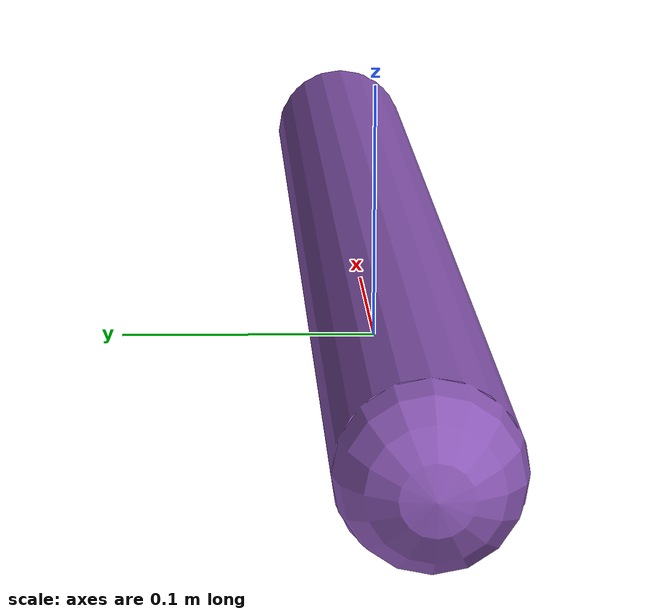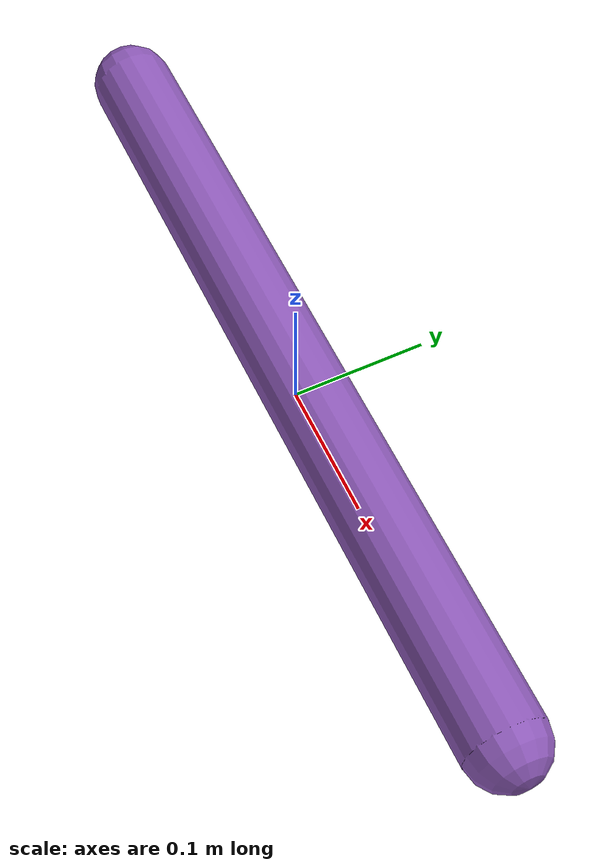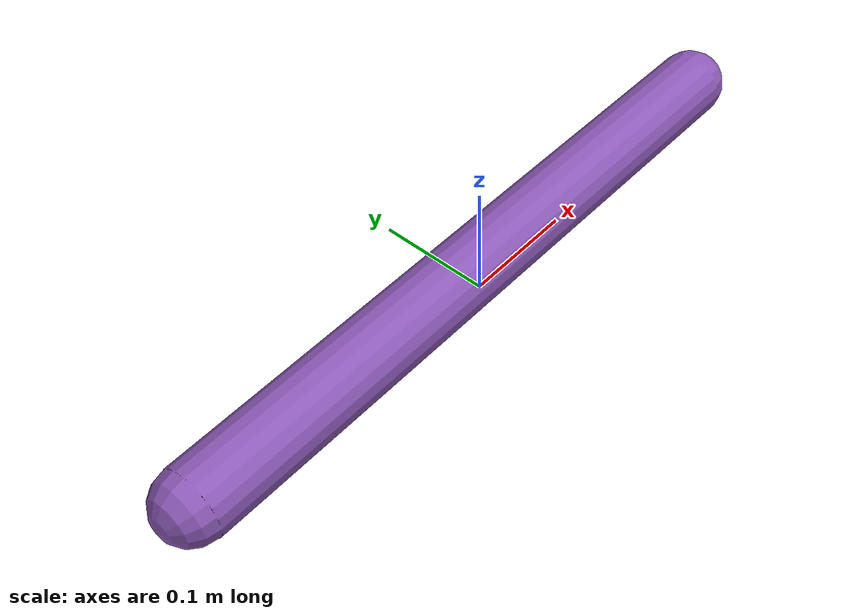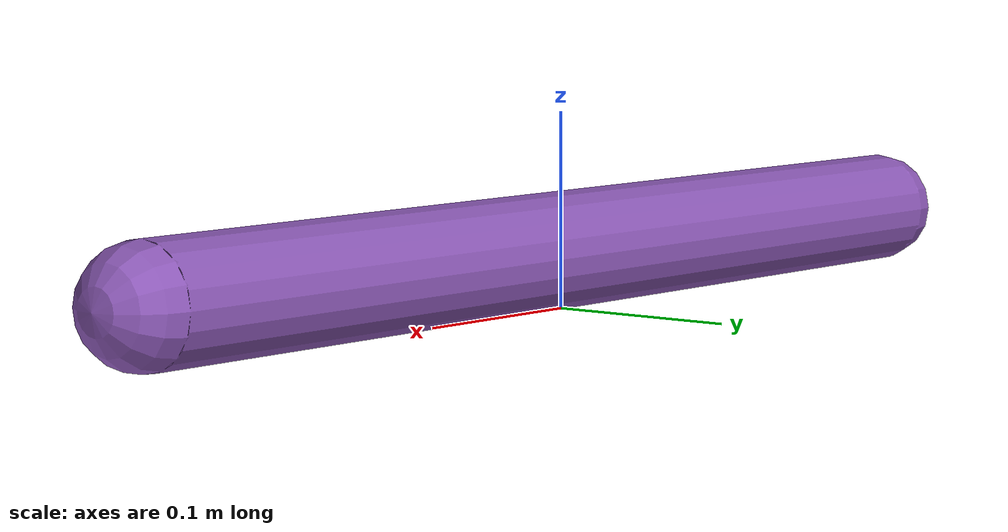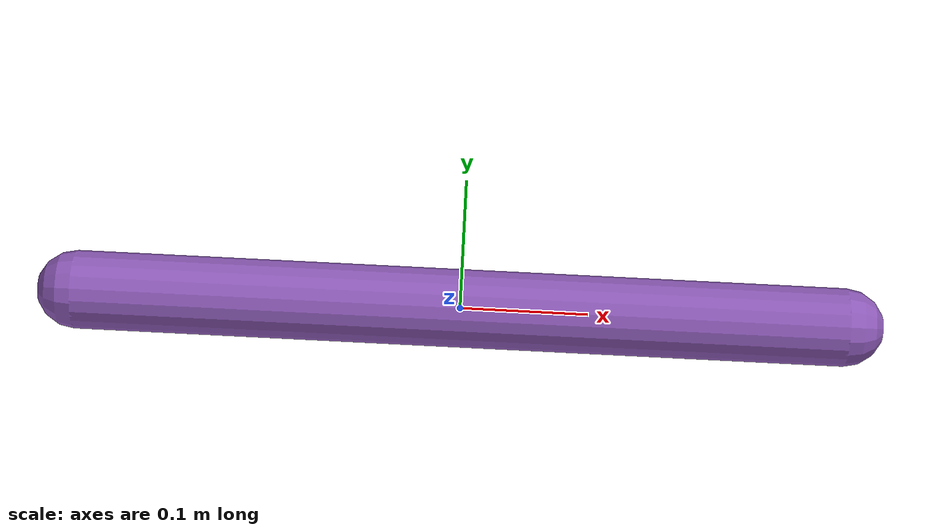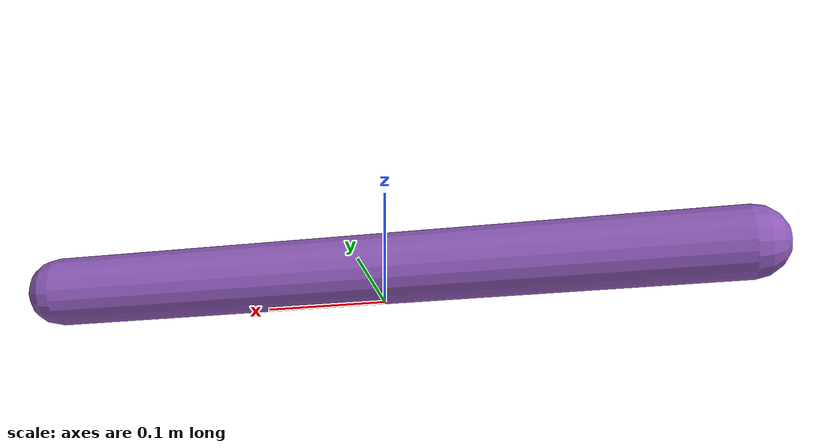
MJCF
<mujoco model="stick_prim_purple_30">
  <compiler angle="radian"/>
  <asset>
  </asset>
  <worldbody>
    <body name="stick_prim_purple_30">
      <freejoint/>
      <geom name="stick_prim_purple_30_g0" type="capsule" size="0.03" fromto="-0.295 0 0.03 0.295 0 0.03" rgba="0.55 0.35 0.72 1" mass="0.05" friction="0.05 0.05 0.005" condim="4"/>
    </body>
  </worldbody>
</mujoco>
